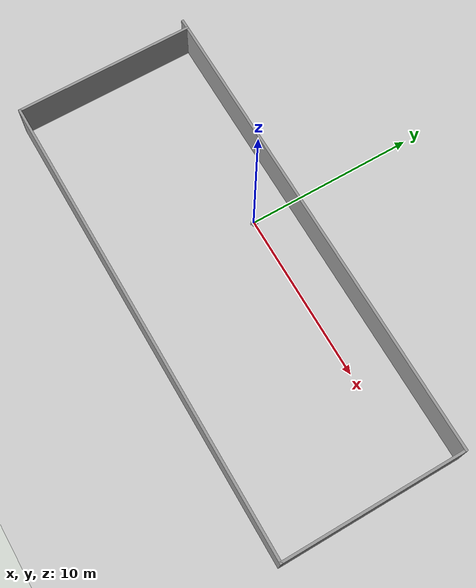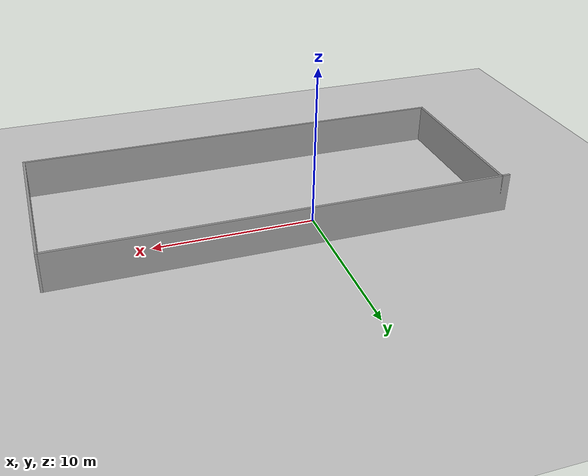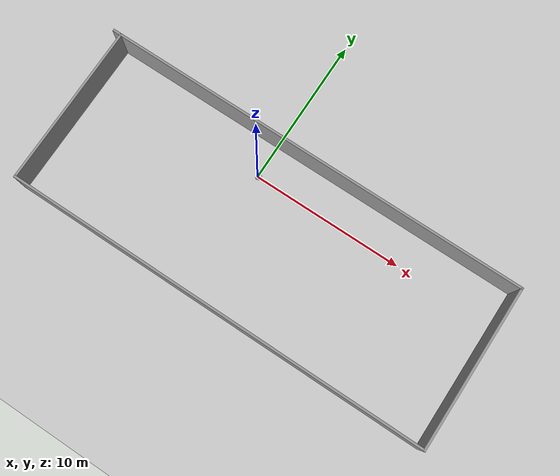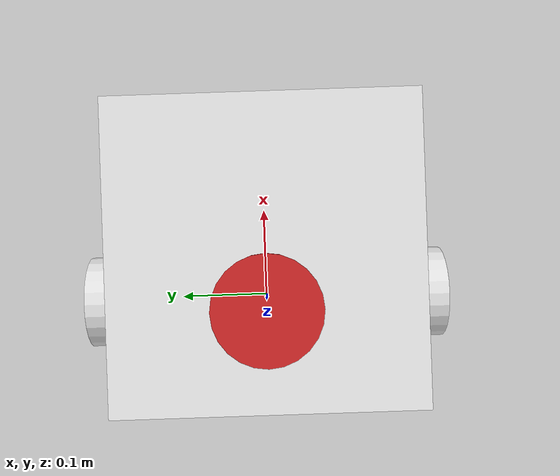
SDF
<sdf version="1.6">
 <world name="default">
  <light name="sun" type="directional">
   <pose>0 0 10 0 -0 0</pose>
   <diffuse>0.8 0.8 0.8 1</diffuse>
   <specular>0.2 0.2 0.2 1</specular>
   <attenuation>
    <range>1000</range>
    <constant>0.9</constant>
    <linear>0.01</linear>
    <quadratic>0.001</quadratic>
   </attenuation>
   <direction>-0.5 0.1 -0.9</direction>
  </light>
  <model name="ground_plane">
   <static>1</static>
   <link name="link">
    <collision name="collision">
     <geometry><plane><normal>0 0 1</normal><size>100 100</size></plane></geometry>
     <surface>
      <contact><collide_bitmask>65535</collide_bitmask></contact>
      <friction><ode><mu>100</mu><mu2>50</mu2></ode></friction>
     </surface>
    </collision>
    <visual name="visual">
     <cast_shadows>0</cast_shadows>
     <geometry><plane><normal>0 0 1</normal><size>100 100</size></plane></geometry>
     <material>
      <script><uri>file://media/materials/scripts/gazebo.material</uri><name>Gazebo/Grey</name></script>
     </material>
    </visual>
   </link>
  </model>
  <gravity>0 0 -9.8</gravity>
  <magnetic_field>6e-06 2.3e-05 -4.2e-05</magnetic_field>
  <atmosphere type="adiabatic"/>
  <physics name="default_physics" default="0" type="ode">
   <max_step_size>0.001</max_step_size>
   <real_time_factor>1</real_time_factor>
   <real_time_update_rate>1000</real_time_update_rate>
  </physics>
  <scene><ambient>0.4 0.4 0.4 1</ambient><background>0.7 0.7 0.7 1</background><shadows>1</shadows></scene>
  <spherical_coordinates>
   <surface_model>EARTH_WGS84</surface_model>
   <latitude_deg>0</latitude_deg>
   <longitude_deg>0</longitude_deg>
   <elevation>0</elevation>
   <heading_deg>0</heading_deg>
  </spherical_coordinates>
  <model name="Untitled">
   <pose>2.27229 -3.01198 0 0 -0 0</pose>
   <link name="Wall_0">
    <collision name="Wall_0_Collision">
     <geometry><box><size>28.5 0.15 2.5</size></box></geometry>
     <pose>0 0 1.25 0 -0 0</pose>
    </collision>
    <visual name="Wall_0_Visual">
     <pose>0 0 1.25 0 -0 0</pose>
     <geometry><box><size>28.5 0.15 2.5</size></box></geometry>
     <material>
      <script><uri>file://media/materials/scripts/gazebo.material</uri><name>Gazebo/Grey</name></script>
      <ambient>1 1 1 1</ambient>
     </material>
     <meta><layer>0</layer></meta>
    </visual>
    <pose>-0 5.3 0 0 -0 0</pose>
   </link>
   <link name="Wall_1">
    <collision name="Wall_1_Collision">
     <geometry><box><size>10.75 0.15 2.5</size></box></geometry>
     <pose>0 0 1.25 0 -0 0</pose>
    </collision>
    <visual name="Wall_1_Visual">
     <pose>0 0 1.25 0 -0 0</pose>
     <geometry><box><size>10.75 0.15 2.5</size></box></geometry>
     <material>
      <script><uri>file://media/materials/scripts/gazebo.material</uri><name>Gazebo/Grey</name></script>
      <ambient>1 1 1 1</ambient>
     </material>
     <meta><layer>0</layer></meta>
    </visual>
    <pose>14.175 0 0 0 -0 -1.5708</pose>
   </link>
   <link name="Wall_2">
    <collision name="Wall_2_Collision">
     <geometry><box><size>28 0.15 2.5</size></box></geometry>
     <pose>0 0 1.25 0 -0 0</pose>
    </collision>
    <visual name="Wall_2_Visual">
     <pose>0 0 1.25 0 -0 0</pose>
     <geometry><box><size>28 0.15 2.5</size></box></geometry>
     <material>
      <script><uri>file://media/materials/scripts/gazebo.material</uri><name>Gazebo/Grey</name></script>
      <ambient>1 1 1 1</ambient>
     </material>
     <meta><layer>0</layer></meta>
    </visual>
    <pose>0.25 -5.3 0 0 -0 3.14159</pose>
   </link>
   <link name="Wall_3">
    <collision name="Wall_3_Collision">
     <geometry><box><size>10.75 0.15 2.5</size></box></geometry>
     <pose>0 0 1.25 0 -0 0</pose>
    </collision>
    <visual name="Wall_3_Visual">
     <pose>0 0 1.25 0 -0 0</pose>
     <geometry><box><size>10.75 0.15 2.5</size></box></geometry>
     <material>
      <script><uri>file://media/materials/scripts/gazebo.material</uri><name>Gazebo/Grey</name></script>
      <ambient>1 1 1 1</ambient>
     </material>
     <meta><layer>0</layer></meta>
    </visual>
    <pose>-13.675 0 0 0 -0 1.5708</pose>
   </link>
   <static>1</static>
  </model>
  <model name="test_robot">
   <link name="base_link">
    <inertial>
     <pose>0.045455 0 0.084091 0 -0 0</pose>
     <mass>1.1</mass>
     <inertia>
      <ixx>0.0103599</ixx>
      <ixy>0</ixy>
      <ixz>0.000454545</ixz>
      <iyy>0.0105872</iyy>
      <iyz>0</iyz>
      <izz>0.0153523</izz>
     </inertia>
    </inertial>
    <collision name="base_link_fixed_joint_lump__chassis_collision">
     <pose>0.05 0 0.075 0 -0 0</pose>
     <geometry><box><size>0.3 0.3 0.15</size></box></geometry>
    </collision>
    <collision name="base_link_fixed_joint_lump__laser_frame_collision_1">
     <pose>0 0 0.175 0 -0 0</pose>
     <geometry><cylinder><length>0.04</length><radius>0.05</radius></cylinder></geometry>
    </collision>
    <visual name="base_link_fixed_joint_lump__chassis_visual">
     <pose>0.05 0 0.075 0 -0 0</pose>
     <geometry><box><size>0.3 0.3 0.15</size></box></geometry>
     <material>
      <script><name>Gazebo/White</name><uri>file://media/materials/scripts/gazebo.material</uri></script>
     </material>
    </visual>
    <visual name="base_link_fixed_joint_lump__camera_link_visual_1">
     <pose>0.205 0 0.08 0 -0 0</pose>
     <geometry><box><size>0.01 0.03 0.03</size></box></geometry>
     <material>
      <script><name>Gazebo/Red</name><uri>file://media/materials/scripts/gazebo.material</uri></script>
     </material>
    </visual>
    <visual name="base_link_fixed_joint_lump__laser_frame_visual_2">
     <pose>0 0 0.175 0 -0 0</pose>
     <geometry><cylinder><length>0.04</length><radius>0.05</radius></cylinder></geometry>
     <material>
      <script><name>Gazebo/Red</name><uri>file://media/materials/scripts/gazebo.material</uri></script>
     </material>
    </visual>
    <sensor name="camera" type="camera">
     <visualize>1</visualize>
     <update_rate>10</update_rate>
     <camera name="__default__">
      <horizontal_fov>1.089</horizontal_fov>
      <image><format>R8G8B8</format><width>640</width><height>480</height></image>
      <clip><near>0.05</near><far>8</far></clip>
     </camera>
     <plugin name="camera_controller" filename="libgazebo_ros_camera.so">
      <frame_name>camera_link_optical</frame_name>
      <robotNamespace>/</robotNamespace>
     </plugin>
     <pose>0.205 0 0.08 0 -0 0</pose>
    </sensor>
    <sensor name="laser" type="ray">
     <visualize>1</visualize>
     <update_rate>10</update_rate>
     <ray>
      <scan>
       <horizontal>
        <samples>360</samples>
        <min_angle>-3.14</min_angle>
        <max_angle>3.14</max_angle>
        <resolution>1</resolution>
       </horizontal>
       <vertical><samples>1</samples><min_angle>0</min_angle><max_angle>0</max_angle></vertical>
      </scan>
      <range><min>0.3</min><max>12</max></range>
     </ray>
     <plugin name="laser_controller" filename="libgazebo_ros_ray_sensor.so">
      <ros><argument>~/out:=scan</argument></ros>
      <output_type>sensor_msgs/LaserScan</output_type>
      <frame_name>laser_frame</frame_name>
      <robotNamespace>/</robotNamespace>
     </plugin>
     <pose>0 0 0.175 0 -0 0</pose>
    </sensor>
   </link>
   <link name="caster_wheel">
    <pose>0.14 0 0 0 -0 0</pose>
    <inertial>
     <mass>0.1</mass>
     <inertia><ixx>0.0001</ixx><ixy>0</ixy><ixz>0</ixz><iyy>0.0001</iyy><iyz>0</iyz><izz>0.0001</izz></inertia>
    </inertial>
    <collision name="caster_wheel_collision">
     <geometry><sphere><radius>0.05</radius></sphere></geometry>
    </collision>
    <visual name="caster_wheel_visual">
     <geometry><sphere><radius>0.05</radius></sphere></geometry>
     <material>
      <script><name>Gazebo/White</name><uri>file://media/materials/scripts/gazebo.material</uri></script>
     </material>
    </visual>
   </link>
   <joint name="caster_wheel_joint" type="revolute">
    <child>caster_wheel</child>
    <parent>base_link</parent>
    <axis>
     <xyz>0 1 0</xyz>
     <limit><lower>-1e+16</lower><upper>1e+16</upper></limit>
     <dynamics>
      <damping>0.001</damping>
      <friction>0</friction>
      <spring_reference>0</spring_reference>
      <spring_stiffness>0</spring_stiffness>
     </dynamics>
     <use_parent_model_frame>0</use_parent_model_frame>
    </axis>
   </joint>
   <link name="left_wheel">
    <pose>0 0.175 0 -1.5708 0 0</pose>
    <inertial>
     <mass>1.5</mass>
     <inertia><ixx>0.00125</ixx><ixy>0</ixy><ixz>0</ixz><iyy>0.00125</iyy><iyz>0</iyz><izz>0.001875</izz></inertia>
    </inertial>
    <collision name="left_wheel_collision">
     <geometry><cylinder><length>0.04</length><radius>0.05</radius></cylinder></geometry>
    </collision>
    <visual name="left_wheel_visual">
     <geometry><cylinder><length>0.04</length><radius>0.05</radius></cylinder></geometry>
     <material>
      <script><name>Gazebo/White</name><uri>file://media/materials/scripts/gazebo.material</uri></script>
     </material>
    </visual>
   </link>
   <joint name="left_wheel_joint" type="revolute">
    <child>left_wheel</child>
    <parent>base_link</parent>
    <axis>
     <xyz>0 0 1</xyz>
     <limit><lower>-1e+16</lower><upper>1e+16</upper></limit>
     <dynamics><spring_reference>0</spring_reference><spring_stiffness>0</spring_stiffness></dynamics>
     <use_parent_model_frame>0</use_parent_model_frame>
    </axis>
   </joint>
   <link name="right_wheel">
    <pose>0 -0.175 0 1.5708 -0 0</pose>
    <inertial>
     <mass>1.5</mass>
     <inertia><ixx>0.00125</ixx><ixy>0</ixy><ixz>0</ixz><iyy>0.00125</iyy><iyz>0</iyz><izz>0.001875</izz></inertia>
    </inertial>
    <collision name="right_wheel_collision">
     <geometry><cylinder><length>0.04</length><radius>0.05</radius></cylinder></geometry>
    </collision>
    <visual name="right_wheel_visual">
     <geometry><cylinder><length>0.04</length><radius>0.05</radius></cylinder></geometry>
     <material>
      <script><name>Gazebo/White</name><uri>file://media/materials/scripts/gazebo.material</uri></script>
     </material>
    </visual>
   </link>
   <joint name="right_wheel_joint" type="revolute">
    <child>right_wheel</child>
    <parent>base_link</parent>
    <axis>
     <xyz>0 0 -1</xyz>
     <limit><lower>-1e+16</lower><upper>1e+16</upper></limit>
     <dynamics><spring_reference>0</spring_reference><spring_stiffness>0</spring_stiffness></dynamics>
     <use_parent_model_frame>0</use_parent_model_frame>
    </axis>
   </joint>
   <static>0</static>
   <plugin name="diff_drive" filename="libgazebo_ros_diff_drive.so">
    <legacyMode>1</legacyMode>
    <rosDebugLevel>Debug</rosDebugLevel>
    <publishWheelTF>0</publishWheelTF>
    <robotNamespace>/</robotNamespace>
    <publishTf>1</publishTf>
    <publishWheelJointState>0</publishWheelJointState>
    <alwaysOn>1</alwaysOn>
    <updateRate>100.0</updateRate>
    <leftJoint>left_wheel_joint</leftJoint>
    <rightJoint>right_wheel_joint</rightJoint>
    <wheelSeparation>0.35</wheelSeparation>
    <wheelDiameter>0.1</wheelDiameter>
    <broadcastTF>1</broadcastTF>
    <wheelTorque>10</wheelTorque>
    <wheelAcceleration>0.1</wheelAcceleration>
    <commandTopic>cmd_vel</commandTopic>
    <odometryFrame>odom</odometryFrame>
    <odometryTopic>odom</odometryTopic>
    <robotBaseFrame>base_footprint</robotBaseFrame>
   </plugin>
   <pose>0.000566 1e-06 0.05 -0 5e-06 -9.5e-05</pose>
  </model>
 </world>
</sdf>
